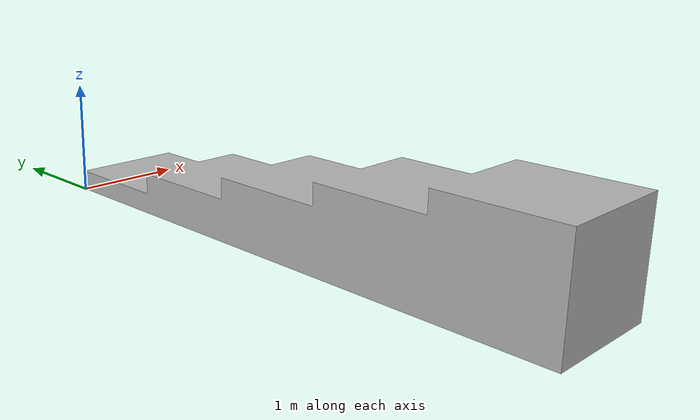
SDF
<sdf version='1.6'>
  <model name='step_type1.SLDPRT'>
    <link name='step_type1'>
      <pose frame=''>0 0 0 0 -0 0</pose>
      <inertial>
        <pose frame=''>0.5 -3.1667 0.33 0 -0 0</pose>
        <mass>2700</mass>
        <inertia>
          <ixx>4568.37</ixx>
          <ixy>-5.55112e-14</ixy>
          <ixz>-3.39897e-30</ixz>
          <iyy>368.37</iyy>
          <iyz>378</iyz>
          <izz>4650</izz>
        </inertia>
      </inertial>
      <collision name='step_type1_collision'>
        <pose frame=''>0 0 0 1.5708 -0 0</pose>
        <geometry>
          <mesh>
            <scale>1 1 1</scale>
            <uri>model://step_type1/meshes/step_type1.STL</uri>
          </mesh>
        </geometry>
      </collision>
      <visual name='step_type1_visual'>
        <pose frame=''>0 0 0 1.5708 -0 0</pose>
        <geometry>
          <mesh>
            <scale>1 1 1</scale>
            <uri>model://step_type1/meshes/step_type1.STL</uri>
          </mesh>
        </geometry>
      </visual>
    </link>
  </model>
</sdf>
